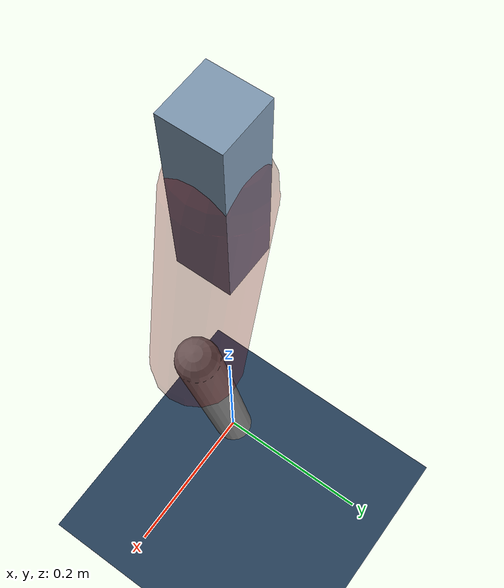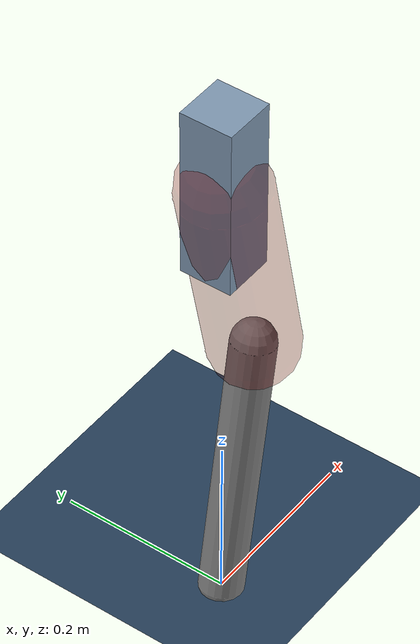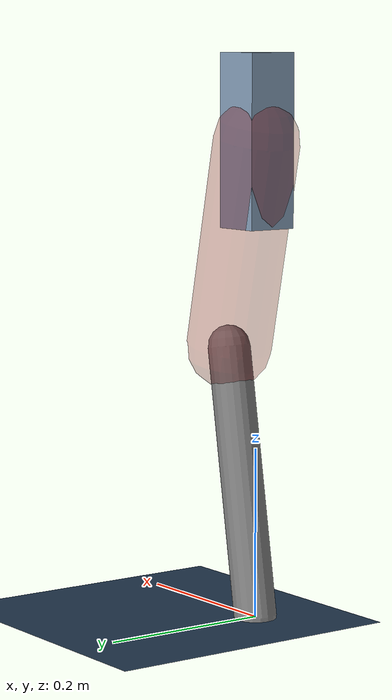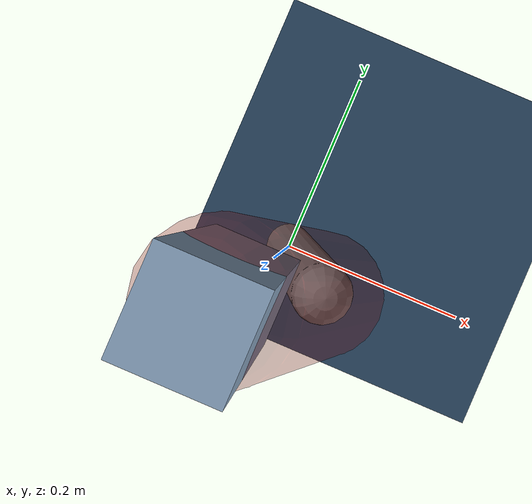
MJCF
<mujoco model="Hopper2D">
	<compiler inertiafromgeom="true" angle="radian" />
	<option timestep="0.001" integrator="implicit" cone="elliptic" solver="Newton" tolerance="1e-10" />

	<default>
		<geom contype="1" conaffinity="1" condim="3" friction="2 0.005 0.0001" solref="0.005 1" />
		<joint limited="true" damping="0.1" />
	</default>

	<asset>
		<texture name="skybox" type="skybox" builtin="gradient" rgb1=".4 .6 .8" rgb2="0 0 0" width="800" height="800" />
		<texture name="grid" type="2d" builtin="checker" rgb1=".1 .2 .3" rgb2=".2 .3 .4" width="300" height="300" mark="edge" markrgb=".2 .3 .4" />
		<material name="ground" texture="grid" texrepeat="1 1" texuniform="true" reflectance="0.1" />
		<material name="leg" rgba="0.5 0.6 0.7 1" />
	</asset>

	<worldbody>

		<geom name="floor" type="plane" size="5 5 0.25" material="ground" />

		<light directional="false" diffuse="0.8 0.8 0.8" specular="0.3 0.3 0.3" pos="0 0 2" dir="0 0 -1" />
		<light mode="targetbodycom" target="base" directional="false" diffuse="0.8 0.8 0.8" specular="0.3 0.3 0.3" pos="0 0 2" dir="0 0 -1" />

		<camera name="fixed" pos="0 -2 1" xyaxes="1 0 0 0 0 1" />
		<camera name="tracking" mode="trackcom" pos="0 -3 1" />

		<body name="root" pos="0 0 0.5571541116447375">
			<joint name="slide_x" type="slide" axis="1 0 0" range="-100 100" />
			<joint name="slide_z" type="slide" axis="0 0 1" range="0 10" />

			<body name="base" pos="0 0 0">
				<geom name="torso" type="box" size="0.03 0.03 0.1" mass="2.922" material="leg" />

				<body name="link1" pos="0 0 0" euler="0 1.3567849120867046 0">
					<joint type="hinge" axis="0 -1 0" pos="0 0 0" name="hinge1" limited="true" range="-3.14 3.14" stiffness="0" damping="0.1" />
					<geom name="thigh" type="capsule" fromto="0 0 0 0.24753100895779237 0 0" size="0.05" rgba="0.5 0 0 0.3" mass="0.8499806232902601" />

					<body name="link2" pos="0.24753100895779237 0 0" euler="0 0.3792403164759228 0">
						<joint type="hinge" axis="0 -1 0" pos="0 0 0" name="hinge2" limited="true" range="-3.14 3.14" stiffness="0" damping="0.1" />
						<geom name="shank" type="capsule" fromto="0 0 0 0.3196231026869451 0 0" size="0.025" mass="0.49939848214955607" />

					</body>
				</body>
			</body>
		</body>
	</worldbody>

	<actuator>
		<motor name="torque1" joint="hinge1" ctrlrange="-77.81502563806663 77.81502563806663" ctrllimited="true" gear="1" />
		<motor name="torque2" joint="hinge2" ctrlrange="-145.85770679677915 145.85770679677915" ctrllimited="true" gear="1" />
	</actuator>
</mujoco>
